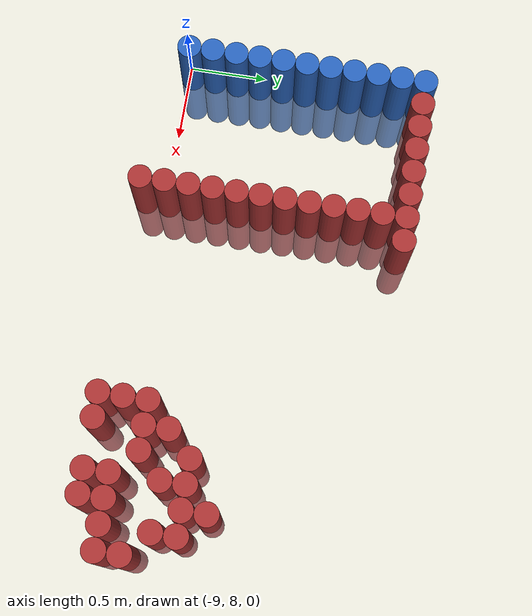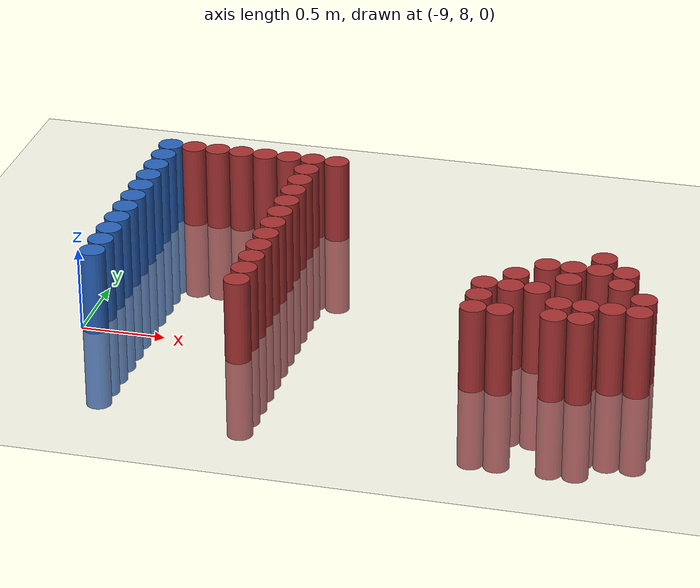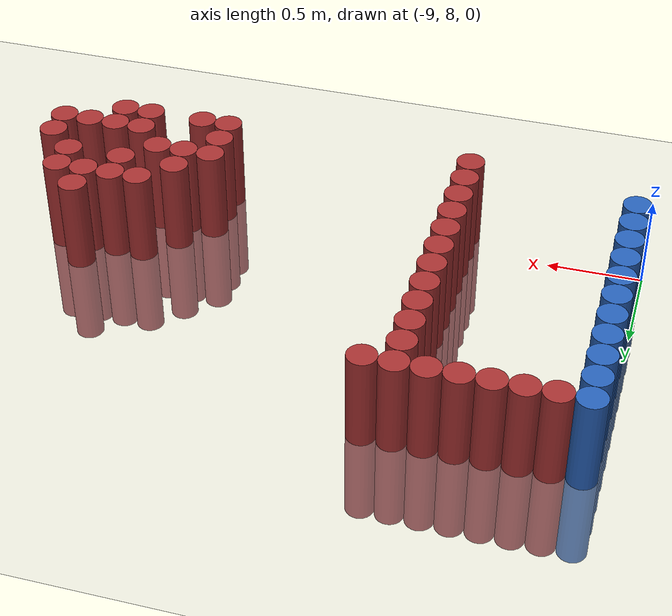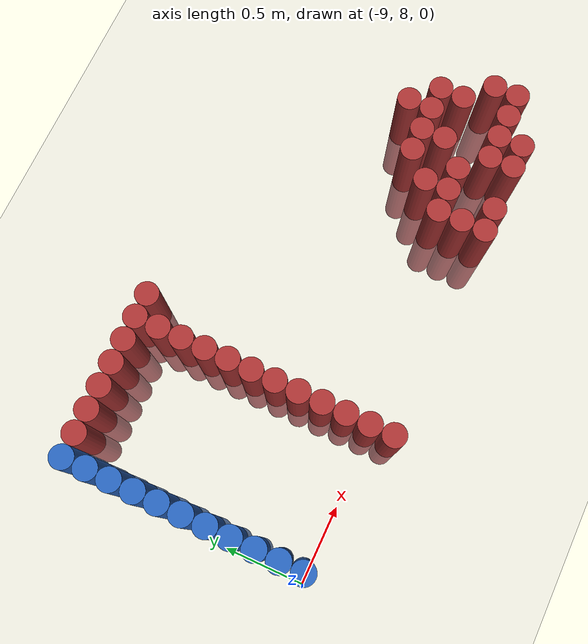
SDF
<sdf version="1.6">
 <world name="default">
  <model name="ground_plane">
   <static>1</static>
   <link name="link">
    <collision name="collision">
     <geometry><plane><normal>0 0 1</normal><size>100 100</size></plane></geometry>
     <surface><friction><ode><mu>100</mu><mu2>50</mu2></ode></friction></surface>
    </collision>
    <visual name="visual">
     <cast_shadows>0</cast_shadows>
     <geometry><plane><normal>0 0 1</normal><size>100 100</size></plane></geometry>
     <material>
      <script><uri>file://media/materials/scripts/gazebo.material</uri><name>Gazebo/Grey</name></script>
     </material>
    </visual>
   </link>
  </model>
  <model name="unit_cylinder_144">
   <static>1</static>
   <pose>-8.925000 8.025000 0.000000 0.000000 0.000000 0.000000</pose>
   <link name="link">
    <inertial>
     <mass>1</mass>
     <inertia><ixx>0.145833</ixx><ixy>0</ixy><ixz>0</ixz><iyy>0.145833</iyy><iyz>0</iyz><izz>0.125</izz></inertia>
    </inertial>
    <collision name="collision">
     <geometry><cylinder><radius>0.075000</radius><length>1</length></cylinder></geometry>
    </collision>
    <visual name="visual">
     <geometry><cylinder><radius>0.075000</radius><length>1</length></cylinder></geometry>
     <material>
      <ambient>0.152000 0.379000 0.720000 1</ambient>
      <diffuse>0.152000 0.379000 0.720000 1</diffuse>
     </material>
     <material>
      <script><name>Gazebo/Grey</name><uri>file://media/materials/scripts/gazebo.material</uri></script>
     </material>
    </visual>
   </link>
  </model>
  <model name="unit_cylinder_145">
   <static>1</static>
   <pose>-8.925000 8.175000 0.000000 0.000000 0.000000 0.000000</pose>
   <link name="link">
    <inertial>
     <mass>1</mass>
     <inertia><ixx>0.145833</ixx><ixy>0</ixy><ixz>0</ixz><iyy>0.145833</iyy><iyz>0</iyz><izz>0.125</izz></inertia>
    </inertial>
    <collision name="collision">
     <geometry><cylinder><radius>0.075000</radius><length>1</length></cylinder></geometry>
    </collision>
    <visual name="visual">
     <geometry><cylinder><radius>0.075000</radius><length>1</length></cylinder></geometry>
     <material>
      <ambient>0.152000 0.379000 0.720000 1</ambient>
      <diffuse>0.152000 0.379000 0.720000 1</diffuse>
     </material>
     <material>
      <script><name>Gazebo/Grey</name><uri>file://media/materials/scripts/gazebo.material</uri></script>
     </material>
    </visual>
   </link>
  </model>
  <model name="unit_cylinder_146">
   <static>1</static>
   <pose>-8.925000 8.325000 0.000000 0.000000 0.000000 0.000000</pose>
   <link name="link">
    <inertial>
     <mass>1</mass>
     <inertia><ixx>0.145833</ixx><ixy>0</ixy><ixz>0</ixz><iyy>0.145833</iyy><iyz>0</iyz><izz>0.125</izz></inertia>
    </inertial>
    <collision name="collision">
     <geometry><cylinder><radius>0.075000</radius><length>1</length></cylinder></geometry>
    </collision>
    <visual name="visual">
     <geometry><cylinder><radius>0.075000</radius><length>1</length></cylinder></geometry>
     <material>
      <ambient>0.152000 0.379000 0.720000 1</ambient>
      <diffuse>0.152000 0.379000 0.720000 1</diffuse>
     </material>
     <material>
      <script><name>Gazebo/Grey</name><uri>file://media/materials/scripts/gazebo.material</uri></script>
     </material>
    </visual>
   </link>
  </model>
  <model name="unit_cylinder_147">
   <static>1</static>
   <pose>-8.925000 8.475000 0.000000 0.000000 0.000000 0.000000</pose>
   <link name="link">
    <inertial>
     <mass>1</mass>
     <inertia><ixx>0.145833</ixx><ixy>0</ixy><ixz>0</ixz><iyy>0.145833</iyy><iyz>0</iyz><izz>0.125</izz></inertia>
    </inertial>
    <collision name="collision">
     <geometry><cylinder><radius>0.075000</radius><length>1</length></cylinder></geometry>
    </collision>
    <visual name="visual">
     <geometry><cylinder><radius>0.075000</radius><length>1</length></cylinder></geometry>
     <material>
      <ambient>0.152000 0.379000 0.720000 1</ambient>
      <diffuse>0.152000 0.379000 0.720000 1</diffuse>
     </material>
     <material>
      <script><name>Gazebo/Grey</name><uri>file://media/materials/scripts/gazebo.material</uri></script>
     </material>
    </visual>
   </link>
  </model>
  <model name="unit_cylinder_148">
   <static>1</static>
   <pose>-8.925000 8.625000 0.000000 0.000000 0.000000 0.000000</pose>
   <link name="link">
    <inertial>
     <mass>1</mass>
     <inertia><ixx>0.145833</ixx><ixy>0</ixy><ixz>0</ixz><iyy>0.145833</iyy><iyz>0</iyz><izz>0.125</izz></inertia>
    </inertial>
    <collision name="collision">
     <geometry><cylinder><radius>0.075000</radius><length>1</length></cylinder></geometry>
    </collision>
    <visual name="visual">
     <geometry><cylinder><radius>0.075000</radius><length>1</length></cylinder></geometry>
     <material>
      <ambient>0.152000 0.379000 0.720000 1</ambient>
      <diffuse>0.152000 0.379000 0.720000 1</diffuse>
     </material>
     <material>
      <script><name>Gazebo/Grey</name><uri>file://media/materials/scripts/gazebo.material</uri></script>
     </material>
    </visual>
   </link>
  </model>
  <model name="unit_cylinder_149">
   <static>1</static>
   <pose>-8.925000 8.775000 0.000000 0.000000 0.000000 0.000000</pose>
   <link name="link">
    <inertial>
     <mass>1</mass>
     <inertia><ixx>0.145833</ixx><ixy>0</ixy><ixz>0</ixz><iyy>0.145833</iyy><iyz>0</iyz><izz>0.125</izz></inertia>
    </inertial>
    <collision name="collision">
     <geometry><cylinder><radius>0.075000</radius><length>1</length></cylinder></geometry>
    </collision>
    <visual name="visual">
     <geometry><cylinder><radius>0.075000</radius><length>1</length></cylinder></geometry>
     <material>
      <ambient>0.152000 0.379000 0.720000 1</ambient>
      <diffuse>0.152000 0.379000 0.720000 1</diffuse>
     </material>
     <material>
      <script><name>Gazebo/Grey</name><uri>file://media/materials/scripts/gazebo.material</uri></script>
     </material>
    </visual>
   </link>
  </model>
  <model name="unit_cylinder_150">
   <static>1</static>
   <pose>-8.925000 8.925000 0.000000 0.000000 0.000000 0.000000</pose>
   <link name="link">
    <inertial>
     <mass>1</mass>
     <inertia><ixx>0.145833</ixx><ixy>0</ixy><ixz>0</ixz><iyy>0.145833</iyy><iyz>0</iyz><izz>0.125</izz></inertia>
    </inertial>
    <collision name="collision">
     <geometry><cylinder><radius>0.075000</radius><length>1</length></cylinder></geometry>
    </collision>
    <visual name="visual">
     <geometry><cylinder><radius>0.075000</radius><length>1</length></cylinder></geometry>
     <material>
      <ambient>0.152000 0.379000 0.720000 1</ambient>
      <diffuse>0.152000 0.379000 0.720000 1</diffuse>
     </material>
     <material>
      <script><name>Gazebo/Grey</name><uri>file://media/materials/scripts/gazebo.material</uri></script>
     </material>
    </visual>
   </link>
  </model>
  <model name="unit_cylinder_151">
   <static>1</static>
   <pose>-8.925000 9.075000 0.000000 0.000000 0.000000 0.000000</pose>
   <link name="link">
    <inertial>
     <mass>1</mass>
     <inertia><ixx>0.145833</ixx><ixy>0</ixy><ixz>0</ixz><iyy>0.145833</iyy><iyz>0</iyz><izz>0.125</izz></inertia>
    </inertial>
    <collision name="collision">
     <geometry><cylinder><radius>0.075000</radius><length>1</length></cylinder></geometry>
    </collision>
    <visual name="visual">
     <geometry><cylinder><radius>0.075000</radius><length>1</length></cylinder></geometry>
     <material>
      <ambient>0.152000 0.379000 0.720000 1</ambient>
      <diffuse>0.152000 0.379000 0.720000 1</diffuse>
     </material>
     <material>
      <script><name>Gazebo/Grey</name><uri>file://media/materials/scripts/gazebo.material</uri></script>
     </material>
    </visual>
   </link>
  </model>
  <model name="unit_cylinder_152">
   <static>1</static>
   <pose>-8.925000 9.225000 0.000000 0.000000 0.000000 0.000000</pose>
   <link name="link">
    <inertial>
     <mass>1</mass>
     <inertia><ixx>0.145833</ixx><ixy>0</ixy><ixz>0</ixz><iyy>0.145833</iyy><iyz>0</iyz><izz>0.125</izz></inertia>
    </inertial>
    <collision name="collision">
     <geometry><cylinder><radius>0.075000</radius><length>1</length></cylinder></geometry>
    </collision>
    <visual name="visual">
     <geometry><cylinder><radius>0.075000</radius><length>1</length></cylinder></geometry>
     <material>
      <ambient>0.152000 0.379000 0.720000 1</ambient>
      <diffuse>0.152000 0.379000 0.720000 1</diffuse>
     </material>
     <material>
      <script><name>Gazebo/Grey</name><uri>file://media/materials/scripts/gazebo.material</uri></script>
     </material>
    </visual>
   </link>
  </model>
  <model name="unit_cylinder_153">
   <static>1</static>
   <pose>-8.925000 9.375000 0.000000 0.000000 0.000000 0.000000</pose>
   <link name="link">
    <inertial>
     <mass>1</mass>
     <inertia><ixx>0.145833</ixx><ixy>0</ixy><ixz>0</ixz><iyy>0.145833</iyy><iyz>0</iyz><izz>0.125</izz></inertia>
    </inertial>
    <collision name="collision">
     <geometry><cylinder><radius>0.075000</radius><length>1</length></cylinder></geometry>
    </collision>
    <visual name="visual">
     <geometry><cylinder><radius>0.075000</radius><length>1</length></cylinder></geometry>
     <material>
      <ambient>0.152000 0.379000 0.720000 1</ambient>
      <diffuse>0.152000 0.379000 0.720000 1</diffuse>
     </material>
     <material>
      <script><name>Gazebo/Grey</name><uri>file://media/materials/scripts/gazebo.material</uri></script>
     </material>
    </visual>
   </link>
  </model>
  <model name="unit_cylinder_154">
   <static>1</static>
   <pose>-8.925000 9.525000 0.000000 0.000000 0.000000 0.000000</pose>
   <link name="link">
    <inertial>
     <mass>1</mass>
     <inertia><ixx>0.145833</ixx><ixy>0</ixy><ixz>0</ixz><iyy>0.145833</iyy><iyz>0</iyz><izz>0.125</izz></inertia>
    </inertial>
    <collision name="collision">
     <geometry><cylinder><radius>0.075000</radius><length>1</length></cylinder></geometry>
    </collision>
    <visual name="visual">
     <geometry><cylinder><radius>0.075000</radius><length>1</length></cylinder></geometry>
     <material>
      <ambient>0.152000 0.379000 0.720000 1</ambient>
      <diffuse>0.152000 0.379000 0.720000 1</diffuse>
     </material>
     <material>
      <script><name>Gazebo/Grey</name><uri>file://media/materials/scripts/gazebo.material</uri></script>
     </material>
    </visual>
   </link>
  </model>
  <model name="unit_cylinder_156">
   <static>1</static>
   <pose>-8.775000 9.525000 0.000000 0.000000 0.000000 0.000000</pose>
   <link name="link">
    <inertial>
     <mass>1</mass>
     <inertia><ixx>0.145833</ixx><ixy>0</ixy><ixz>0</ixz><iyy>0.145833</iyy><iyz>0</iyz><izz>0.125</izz></inertia>
    </inertial>
    <collision name="collision">
     <geometry><cylinder><radius>0.075000</radius><length>1</length></cylinder></geometry>
    </collision>
    <visual name="visual">
     <geometry><cylinder><radius>0.075000</radius><length>1</length></cylinder></geometry>
     <material>
      <ambient>0.648000 0.192000 0.192000 1</ambient>
      <diffuse>0.648000 0.192000 0.192000 1</diffuse>
     </material>
     <material>
      <script><name>Gazebo/Grey</name><uri>file://media/materials/scripts/gazebo.material</uri></script>
     </material>
    </visual>
   </link>
  </model>
  <model name="unit_cylinder_158">
   <static>1</static>
   <pose>-8.625000 9.525000 0.000000 0.000000 0.000000 0.000000</pose>
   <link name="link">
    <inertial>
     <mass>1</mass>
     <inertia><ixx>0.145833</ixx><ixy>0</ixy><ixz>0</ixz><iyy>0.145833</iyy><iyz>0</iyz><izz>0.125</izz></inertia>
    </inertial>
    <collision name="collision">
     <geometry><cylinder><radius>0.075000</radius><length>1</length></cylinder></geometry>
    </collision>
    <visual name="visual">
     <geometry><cylinder><radius>0.075000</radius><length>1</length></cylinder></geometry>
     <material>
      <ambient>0.648000 0.192000 0.192000 1</ambient>
      <diffuse>0.648000 0.192000 0.192000 1</diffuse>
     </material>
     <material>
      <script><name>Gazebo/Grey</name><uri>file://media/materials/scripts/gazebo.material</uri></script>
     </material>
    </visual>
   </link>
  </model>
  <model name="unit_cylinder_160">
   <static>1</static>
   <pose>-8.475000 9.525000 0.000000 0.000000 0.000000 0.000000</pose>
   <link name="link">
    <inertial>
     <mass>1</mass>
     <inertia><ixx>0.145833</ixx><ixy>0</ixy><ixz>0</ixz><iyy>0.145833</iyy><iyz>0</iyz><izz>0.125</izz></inertia>
    </inertial>
    <collision name="collision">
     <geometry><cylinder><radius>0.075000</radius><length>1</length></cylinder></geometry>
    </collision>
    <visual name="visual">
     <geometry><cylinder><radius>0.075000</radius><length>1</length></cylinder></geometry>
     <material>
      <ambient>0.648000 0.192000 0.192000 1</ambient>
      <diffuse>0.648000 0.192000 0.192000 1</diffuse>
     </material>
     <material>
      <script><name>Gazebo/Grey</name><uri>file://media/materials/scripts/gazebo.material</uri></script>
     </material>
    </visual>
   </link>
  </model>
  <model name="unit_cylinder_162">
   <static>1</static>
   <pose>-8.325000 9.525000 0.000000 0.000000 0.000000 0.000000</pose>
   <link name="link">
    <inertial>
     <mass>1</mass>
     <inertia><ixx>0.145833</ixx><ixy>0</ixy><ixz>0</ixz><iyy>0.145833</iyy><iyz>0</iyz><izz>0.125</izz></inertia>
    </inertial>
    <collision name="collision">
     <geometry><cylinder><radius>0.075000</radius><length>1</length></cylinder></geometry>
    </collision>
    <visual name="visual">
     <geometry><cylinder><radius>0.075000</radius><length>1</length></cylinder></geometry>
     <material>
      <ambient>0.648000 0.192000 0.192000 1</ambient>
      <diffuse>0.648000 0.192000 0.192000 1</diffuse>
     </material>
     <material>
      <script><name>Gazebo/Grey</name><uri>file://media/materials/scripts/gazebo.material</uri></script>
     </material>
    </visual>
   </link>
  </model>
  <model name="unit_cylinder_164">
   <static>1</static>
   <pose>-8.175000 9.525000 0.000000 0.000000 0.000000 0.000000</pose>
   <link name="link">
    <inertial>
     <mass>1</mass>
     <inertia><ixx>0.145833</ixx><ixy>0</ixy><ixz>0</ixz><iyy>0.145833</iyy><iyz>0</iyz><izz>0.125</izz></inertia>
    </inertial>
    <collision name="collision">
     <geometry><cylinder><radius>0.075000</radius><length>1</length></cylinder></geometry>
    </collision>
    <visual name="visual">
     <geometry><cylinder><radius>0.075000</radius><length>1</length></cylinder></geometry>
     <material>
      <ambient>0.648000 0.192000 0.192000 1</ambient>
      <diffuse>0.648000 0.192000 0.192000 1</diffuse>
     </material>
     <material>
      <script><name>Gazebo/Grey</name><uri>file://media/materials/scripts/gazebo.material</uri></script>
     </material>
    </visual>
   </link>
  </model>
  <model name="unit_cylinder_183">
   <static>1</static>
   <pose>-8.025000 7.875000 0.000000 0.000000 0.000000 0.000000</pose>
   <link name="link">
    <inertial>
     <mass>1</mass>
     <inertia><ixx>0.145833</ixx><ixy>0</ixy><ixz>0</ixz><iyy>0.145833</iyy><iyz>0</iyz><izz>0.125</izz></inertia>
    </inertial>
    <collision name="collision">
     <geometry><cylinder><radius>0.075000</radius><length>1</length></cylinder></geometry>
    </collision>
    <visual name="visual">
     <geometry><cylinder><radius>0.075000</radius><length>1</length></cylinder></geometry>
     <material>
      <ambient>0.648000 0.192000 0.192000 1</ambient>
      <diffuse>0.648000 0.192000 0.192000 1</diffuse>
     </material>
     <material>
      <script><name>Gazebo/Grey</name><uri>file://media/materials/scripts/gazebo.material</uri></script>
     </material>
    </visual>
   </link>
  </model>
  <model name="unit_cylinder_184">
   <static>1</static>
   <pose>-8.025000 8.025000 0.000000 0.000000 0.000000 0.000000</pose>
   <link name="link">
    <inertial>
     <mass>1</mass>
     <inertia><ixx>0.145833</ixx><ixy>0</ixy><ixz>0</ixz><iyy>0.145833</iyy><iyz>0</iyz><izz>0.125</izz></inertia>
    </inertial>
    <collision name="collision">
     <geometry><cylinder><radius>0.075000</radius><length>1</length></cylinder></geometry>
    </collision>
    <visual name="visual">
     <geometry><cylinder><radius>0.075000</radius><length>1</length></cylinder></geometry>
     <material>
      <ambient>0.648000 0.192000 0.192000 1</ambient>
      <diffuse>0.648000 0.192000 0.192000 1</diffuse>
     </material>
     <material>
      <script><name>Gazebo/Grey</name><uri>file://media/materials/scripts/gazebo.material</uri></script>
     </material>
    </visual>
   </link>
  </model>
  <model name="unit_cylinder_185">
   <static>1</static>
   <pose>-8.025000 8.175000 0.000000 0.000000 0.000000 0.000000</pose>
   <link name="link">
    <inertial>
     <mass>1</mass>
     <inertia><ixx>0.145833</ixx><ixy>0</ixy><ixz>0</ixz><iyy>0.145833</iyy><iyz>0</iyz><izz>0.125</izz></inertia>
    </inertial>
    <collision name="collision">
     <geometry><cylinder><radius>0.075000</radius><length>1</length></cylinder></geometry>
    </collision>
    <visual name="visual">
     <geometry><cylinder><radius>0.075000</radius><length>1</length></cylinder></geometry>
     <material>
      <ambient>0.648000 0.192000 0.192000 1</ambient>
      <diffuse>0.648000 0.192000 0.192000 1</diffuse>
     </material>
     <material>
      <script><name>Gazebo/Grey</name><uri>file://media/materials/scripts/gazebo.material</uri></script>
     </material>
    </visual>
   </link>
  </model>
  <model name="unit_cylinder_186">
   <static>1</static>
   <pose>-8.025000 8.325000 0.000000 0.000000 0.000000 0.000000</pose>
   <link name="link">
    <inertial>
     <mass>1</mass>
     <inertia><ixx>0.145833</ixx><ixy>0</ixy><ixz>0</ixz><iyy>0.145833</iyy><iyz>0</iyz><izz>0.125</izz></inertia>
    </inertial>
    <collision name="collision">
     <geometry><cylinder><radius>0.075000</radius><length>1</length></cylinder></geometry>
    </collision>
    <visual name="visual">
     <geometry><cylinder><radius>0.075000</radius><length>1</length></cylinder></geometry>
     <material>
      <ambient>0.648000 0.192000 0.192000 1</ambient>
      <diffuse>0.648000 0.192000 0.192000 1</diffuse>
     </material>
     <material>
      <script><name>Gazebo/Grey</name><uri>file://media/materials/scripts/gazebo.material</uri></script>
     </material>
    </visual>
   </link>
  </model>
  <model name="unit_cylinder_187">
   <static>1</static>
   <pose>-8.025000 8.475000 0.000000 0.000000 0.000000 0.000000</pose>
   <link name="link">
    <inertial>
     <mass>1</mass>
     <inertia><ixx>0.145833</ixx><ixy>0</ixy><ixz>0</ixz><iyy>0.145833</iyy><iyz>0</iyz><izz>0.125</izz></inertia>
    </inertial>
    <collision name="collision">
     <geometry><cylinder><radius>0.075000</radius><length>1</length></cylinder></geometry>
    </collision>
    <visual name="visual">
     <geometry><cylinder><radius>0.075000</radius><length>1</length></cylinder></geometry>
     <material>
      <ambient>0.648000 0.192000 0.192000 1</ambient>
      <diffuse>0.648000 0.192000 0.192000 1</diffuse>
     </material>
     <material>
      <script><name>Gazebo/Grey</name><uri>file://media/materials/scripts/gazebo.material</uri></script>
     </material>
    </visual>
   </link>
  </model>
  <model name="unit_cylinder_188">
   <static>1</static>
   <pose>-8.025000 8.625000 0.000000 0.000000 0.000000 0.000000</pose>
   <link name="link">
    <inertial>
     <mass>1</mass>
     <inertia><ixx>0.145833</ixx><ixy>0</ixy><ixz>0</ixz><iyy>0.145833</iyy><iyz>0</iyz><izz>0.125</izz></inertia>
    </inertial>
    <collision name="collision">
     <geometry><cylinder><radius>0.075000</radius><length>1</length></cylinder></geometry>
    </collision>
    <visual name="visual">
     <geometry><cylinder><radius>0.075000</radius><length>1</length></cylinder></geometry>
     <material>
      <ambient>0.648000 0.192000 0.192000 1</ambient>
      <diffuse>0.648000 0.192000 0.192000 1</diffuse>
     </material>
     <material>
      <script><name>Gazebo/Grey</name><uri>file://media/materials/scripts/gazebo.material</uri></script>
     </material>
    </visual>
   </link>
  </model>
  <model name="unit_cylinder_189">
   <static>1</static>
   <pose>-8.025000 8.775000 0.000000 0.000000 0.000000 0.000000</pose>
   <link name="link">
    <inertial>
     <mass>1</mass>
     <inertia><ixx>0.145833</ixx><ixy>0</ixy><ixz>0</ixz><iyy>0.145833</iyy><iyz>0</iyz><izz>0.125</izz></inertia>
    </inertial>
    <collision name="collision">
     <geometry><cylinder><radius>0.075000</radius><length>1</length></cylinder></geometry>
    </collision>
    <visual name="visual">
     <geometry><cylinder><radius>0.075000</radius><length>1</length></cylinder></geometry>
     <material>
      <ambient>0.648000 0.192000 0.192000 1</ambient>
      <diffuse>0.648000 0.192000 0.192000 1</diffuse>
     </material>
     <material>
      <script><name>Gazebo/Grey</name><uri>file://media/materials/scripts/gazebo.material</uri></script>
     </material>
    </visual>
   </link>
  </model>
  <model name="unit_cylinder_190">
   <static>1</static>
   <pose>-8.025000 8.925000 0.000000 0.000000 0.000000 0.000000</pose>
   <link name="link">
    <inertial>
     <mass>1</mass>
     <inertia><ixx>0.145833</ixx><ixy>0</ixy><ixz>0</ixz><iyy>0.145833</iyy><iyz>0</iyz><izz>0.125</izz></inertia>
    </inertial>
    <collision name="collision">
     <geometry><cylinder><radius>0.075000</radius><length>1</length></cylinder></geometry>
    </collision>
    <visual name="visual">
     <geometry><cylinder><radius>0.075000</radius><length>1</length></cylinder></geometry>
     <material>
      <ambient>0.648000 0.192000 0.192000 1</ambient>
      <diffuse>0.648000 0.192000 0.192000 1</diffuse>
     </material>
     <material>
      <script><name>Gazebo/Grey</name><uri>file://media/materials/scripts/gazebo.material</uri></script>
     </material>
    </visual>
   </link>
  </model>
  <model name="unit_cylinder_191">
   <static>1</static>
   <pose>-8.025000 9.075000 0.000000 0.000000 0.000000 0.000000</pose>
   <link name="link">
    <inertial>
     <mass>1</mass>
     <inertia><ixx>0.145833</ixx><ixy>0</ixy><ixz>0</ixz><iyy>0.145833</iyy><iyz>0</iyz><izz>0.125</izz></inertia>
    </inertial>
    <collision name="collision">
     <geometry><cylinder><radius>0.075000</radius><length>1</length></cylinder></geometry>
    </collision>
    <visual name="visual">
     <geometry><cylinder><radius>0.075000</radius><length>1</length></cylinder></geometry>
     <material>
      <ambient>0.648000 0.192000 0.192000 1</ambient>
      <diffuse>0.648000 0.192000 0.192000 1</diffuse>
     </material>
     <material>
      <script><name>Gazebo/Grey</name><uri>file://media/materials/scripts/gazebo.material</uri></script>
     </material>
    </visual>
   </link>
  </model>
  <model name="unit_cylinder_192">
   <static>1</static>
   <pose>-8.025000 9.225000 0.000000 0.000000 0.000000 0.000000</pose>
   <link name="link">
    <inertial>
     <mass>1</mass>
     <inertia><ixx>0.145833</ixx><ixy>0</ixy><ixz>0</ixz><iyy>0.145833</iyy><iyz>0</iyz><izz>0.125</izz></inertia>
    </inertial>
    <collision name="collision">
     <geometry><cylinder><radius>0.075000</radius><length>1</length></cylinder></geometry>
    </collision>
    <visual name="visual">
     <geometry><cylinder><radius>0.075000</radius><length>1</length></cylinder></geometry>
     <material>
      <ambient>0.648000 0.192000 0.192000 1</ambient>
      <diffuse>0.648000 0.192000 0.192000 1</diffuse>
     </material>
     <material>
      <script><name>Gazebo/Grey</name><uri>file://media/materials/scripts/gazebo.material</uri></script>
     </material>
    </visual>
   </link>
  </model>
  <model name="unit_cylinder_193">
   <static>1</static>
   <pose>-8.025000 9.375000 0.000000 0.000000 0.000000 0.000000</pose>
   <link name="link">
    <inertial>
     <mass>1</mass>
     <inertia><ixx>0.145833</ixx><ixy>0</ixy><ixz>0</ixz><iyy>0.145833</iyy><iyz>0</iyz><izz>0.125</izz></inertia>
    </inertial>
    <collision name="collision">
     <geometry><cylinder><radius>0.075000</radius><length>1</length></cylinder></geometry>
    </collision>
    <visual name="visual">
     <geometry><cylinder><radius>0.075000</radius><length>1</length></cylinder></geometry>
     <material>
      <ambient>0.648000 0.192000 0.192000 1</ambient>
      <diffuse>0.648000 0.192000 0.192000 1</diffuse>
     </material>
     <material>
      <script><name>Gazebo/Grey</name><uri>file://media/materials/scripts/gazebo.material</uri></script>
     </material>
    </visual>
   </link>
  </model>
  <model name="unit_cylinder_194">
   <static>1</static>
   <pose>-8.025000 9.525000 0.000000 0.000000 0.000000 0.000000</pose>
   <link name="link">
    <inertial>
     <mass>1</mass>
     <inertia><ixx>0.145833</ixx><ixy>0</ixy><ixz>0</ixz><iyy>0.145833</iyy><iyz>0</iyz><izz>0.125</izz></inertia>
    </inertial>
    <collision name="collision">
     <geometry><cylinder><radius>0.075000</radius><length>1</length></cylinder></geometry>
    </collision>
    <visual name="visual">
     <geometry><cylinder><radius>0.075000</radius><length>1</length></cylinder></geometry>
     <material>
      <ambient>0.648000 0.192000 0.192000 1</ambient>
      <diffuse>0.648000 0.192000 0.192000 1</diffuse>
     </material>
     <material>
      <script><name>Gazebo/Grey</name><uri>file://media/materials/scripts/gazebo.material</uri></script>
     </material>
    </visual>
   </link>
  </model>
  <model name="unit_cylinder_196">
   <static>1</static>
   <pose>-7.875000 9.525000 0.000000 0.000000 0.000000 0.000000</pose>
   <link name="link">
    <inertial>
     <mass>1</mass>
     <inertia><ixx>0.145833</ixx><ixy>0</ixy><ixz>0</ixz><iyy>0.145833</iyy><iyz>0</iyz><izz>0.125</izz></inertia>
    </inertial>
    <collision name="collision">
     <geometry><cylinder><radius>0.075000</radius><length>1</length></cylinder></geometry>
    </collision>
    <visual name="visual">
     <geometry><cylinder><radius>0.075000</radius><length>1</length></cylinder></geometry>
     <material>
      <ambient>0.648000 0.192000 0.192000 1</ambient>
      <diffuse>0.648000 0.192000 0.192000 1</diffuse>
     </material>
     <material>
      <script><name>Gazebo/Grey</name><uri>file://media/materials/scripts/gazebo.material</uri></script>
     </material>
    </visual>
   </link>
  </model>
  <model name="unit_cylinder_202">
   <static>1</static>
   <pose>-6.675000 7.875000 0.000000 0.000000 0.000000 0.000000</pose>
   <link name="link">
    <inertial>
     <mass>1</mass>
     <inertia><ixx>0.145833</ixx><ixy>0</ixy><ixz>0</ixz><iyy>0.145833</iyy><iyz>0</iyz><izz>0.125</izz></inertia>
    </inertial>
    <collision name="collision">
     <geometry><cylinder><radius>0.075000</radius><length>1</length></cylinder></geometry>
    </collision>
    <visual name="visual">
     <geometry><cylinder><radius>0.075000</radius><length>1</length></cylinder></geometry>
     <material>
      <ambient>0.648000 0.192000 0.192000 1</ambient>
      <diffuse>0.648000 0.192000 0.192000 1</diffuse>
     </material>
     <material>
      <script><name>Gazebo/Grey</name><uri>file://media/materials/scripts/gazebo.material</uri></script>
     </material>
    </visual>
   </link>
  </model>
  <model name="unit_cylinder_203">
   <static>1</static>
   <pose>-6.675000 8.025000 0.000000 0.000000 0.000000 0.000000</pose>
   <link name="link">
    <inertial>
     <mass>1</mass>
     <inertia><ixx>0.145833</ixx><ixy>0</ixy><ixz>0</ixz><iyy>0.145833</iyy><iyz>0</iyz><izz>0.125</izz></inertia>
    </inertial>
    <collision name="collision">
     <geometry><cylinder><radius>0.075000</radius><length>1</length></cylinder></geometry>
    </collision>
    <visual name="visual">
     <geometry><cylinder><radius>0.075000</radius><length>1</length></cylinder></geometry>
     <material>
      <ambient>0.648000 0.192000 0.192000 1</ambient>
      <diffuse>0.648000 0.192000 0.192000 1</diffuse>
     </material>
     <material>
      <script><name>Gazebo/Grey</name><uri>file://media/materials/scripts/gazebo.material</uri></script>
     </material>
    </visual>
   </link>
  </model>
  <model name="unit_cylinder_204">
   <static>1</static>
   <pose>-6.675000 8.175000 0.000000 0.000000 0.000000 0.000000</pose>
   <link name="link">
    <inertial>
     <mass>1</mass>
     <inertia><ixx>0.145833</ixx><ixy>0</ixy><ixz>0</ixz><iyy>0.145833</iyy><iyz>0</iyz><izz>0.125</izz></inertia>
    </inertial>
    <collision name="collision">
     <geometry><cylinder><radius>0.075000</radius><length>1</length></cylinder></geometry>
    </collision>
    <visual name="visual">
     <geometry><cylinder><radius>0.075000</radius><length>1</length></cylinder></geometry>
     <material>
      <ambient>0.648000 0.192000 0.192000 1</ambient>
      <diffuse>0.648000 0.192000 0.192000 1</diffuse>
     </material>
     <material>
      <script><name>Gazebo/Grey</name><uri>file://media/materials/scripts/gazebo.material</uri></script>
     </material>
    </visual>
   </link>
  </model>
  <model name="unit_cylinder_212">
   <static>1</static>
   <pose>-6.525000 7.875000 0.000000 0.000000 0.000000 0.000000</pose>
   <link name="link">
    <inertial>
     <mass>1</mass>
     <inertia><ixx>0.145833</ixx><ixy>0</ixy><ixz>0</ixz><iyy>0.145833</iyy><iyz>0</iyz><izz>0.125</izz></inertia>
    </inertial>
    <collision name="collision">
     <geometry><cylinder><radius>0.075000</radius><length>1</length></cylinder></geometry>
    </collision>
    <visual name="visual">
     <geometry><cylinder><radius>0.075000</radius><length>1</length></cylinder></geometry>
     <material>
      <ambient>0.648000 0.192000 0.192000 1</ambient>
      <diffuse>0.648000 0.192000 0.192000 1</diffuse>
     </material>
     <material>
      <script><name>Gazebo/Grey</name><uri>file://media/materials/scripts/gazebo.material</uri></script>
     </material>
    </visual>
   </link>
  </model>
  <model name="unit_cylinder_213">
   <static>1</static>
   <pose>-6.525000 8.175000 0.000000 0.000000 0.000000 0.000000</pose>
   <link name="link">
    <inertial>
     <mass>1</mass>
     <inertia><ixx>0.145833</ixx><ixy>0</ixy><ixz>0</ixz><iyy>0.145833</iyy><iyz>0</iyz><izz>0.125</izz></inertia>
    </inertial>
    <collision name="collision">
     <geometry><cylinder><radius>0.075000</radius><length>1</length></cylinder></geometry>
    </collision>
    <visual name="visual">
     <geometry><cylinder><radius>0.075000</radius><length>1</length></cylinder></geometry>
     <material>
      <ambient>0.648000 0.192000 0.192000 1</ambient>
      <diffuse>0.648000 0.192000 0.192000 1</diffuse>
     </material>
     <material>
      <script><name>Gazebo/Grey</name><uri>file://media/materials/scripts/gazebo.material</uri></script>
     </material>
    </visual>
   </link>
  </model>
  <model name="unit_cylinder_214">
   <static>1</static>
   <pose>-6.525000 8.325000 0.000000 0.000000 0.000000 0.000000</pose>
   <link name="link">
    <inertial>
     <mass>1</mass>
     <inertia><ixx>0.145833</ixx><ixy>0</ixy><ixz>0</ixz><iyy>0.145833</iyy><iyz>0</iyz><izz>0.125</izz></inertia>
    </inertial>
    <collision name="collision">
     <geometry><cylinder><radius>0.075000</radius><length>1</length></cylinder></geometry>
    </collision>
    <visual name="visual">
     <geometry><cylinder><radius>0.075000</radius><length>1</length></cylinder></geometry>
     <material>
      <ambient>0.648000 0.192000 0.192000 1</ambient>
      <diffuse>0.648000 0.192000 0.192000 1</diffuse>
     </material>
     <material>
      <script><name>Gazebo/Grey</name><uri>file://media/materials/scripts/gazebo.material</uri></script>
     </material>
    </visual>
   </link>
  </model>
  <model name="unit_cylinder_220">
   <static>1</static>
   <pose>-6.375000 8.175000 0.000000 0.000000 0.000000 0.000000</pose>
   <link name="link">
    <inertial>
     <mass>1</mass>
     <inertia><ixx>0.145833</ixx><ixy>0</ixy><ixz>0</ixz><iyy>0.145833</iyy><iyz>0</iyz><izz>0.125</izz></inertia>
    </inertial>
    <collision name="collision">
     <geometry><cylinder><radius>0.075000</radius><length>1</length></cylinder></geometry>
    </collision>
    <visual name="visual">
     <geometry><cylinder><radius>0.075000</radius><length>1</length></cylinder></geometry>
     <material>
      <ambient>0.648000 0.192000 0.192000 1</ambient>
      <diffuse>0.648000 0.192000 0.192000 1</diffuse>
     </material>
     <material>
      <script><name>Gazebo/Grey</name><uri>file://media/materials/scripts/gazebo.material</uri></script>
     </material>
    </visual>
   </link>
  </model>
  <model name="unit_cylinder_221">
   <static>1</static>
   <pose>-6.375000 8.475000 0.000000 0.000000 0.000000 0.000000</pose>
   <link name="link">
    <inertial>
     <mass>1</mass>
     <inertia><ixx>0.145833</ixx><ixy>0</ixy><ixz>0</ixz><iyy>0.145833</iyy><iyz>0</iyz><izz>0.125</izz></inertia>
    </inertial>
    <collision name="collision">
     <geometry><cylinder><radius>0.075000</radius><length>1</length></cylinder></geometry>
    </collision>
    <visual name="visual">
     <geometry><cylinder><radius>0.075000</radius><length>1</length></cylinder></geometry>
     <material>
      <ambient>0.648000 0.192000 0.192000 1</ambient>
      <diffuse>0.648000 0.192000 0.192000 1</diffuse>
     </material>
     <material>
      <script><name>Gazebo/Grey</name><uri>file://media/materials/scripts/gazebo.material</uri></script>
     </material>
    </visual>
   </link>
  </model>
  <model name="unit_cylinder_224">
   <static>1</static>
   <pose>-6.225000 7.875000 0.000000 0.000000 0.000000 0.000000</pose>
   <link name="link">
    <inertial>
     <mass>1</mass>
     <inertia><ixx>0.145833</ixx><ixy>0</ixy><ixz>0</ixz><iyy>0.145833</iyy><iyz>0</iyz><izz>0.125</izz></inertia>
    </inertial>
    <collision name="collision">
     <geometry><cylinder><radius>0.075000</radius><length>1</length></cylinder></geometry>
    </collision>
    <visual name="visual">
     <geometry><cylinder><radius>0.075000</radius><length>1</length></cylinder></geometry>
     <material>
      <ambient>0.648000 0.192000 0.192000 1</ambient>
      <diffuse>0.648000 0.192000 0.192000 1</diffuse>
     </material>
     <material>
      <script><name>Gazebo/Grey</name><uri>file://media/materials/scripts/gazebo.material</uri></script>
     </material>
    </visual>
   </link>
  </model>
  <model name="unit_cylinder_225">
   <static>1</static>
   <pose>-6.225000 8.025000 0.000000 0.000000 0.000000 0.000000</pose>
   <link name="link">
    <inertial>
     <mass>1</mass>
     <inertia><ixx>0.145833</ixx><ixy>0</ixy><ixz>0</ixz><iyy>0.145833</iyy><iyz>0</iyz><izz>0.125</izz></inertia>
    </inertial>
    <collision name="collision">
     <geometry><cylinder><radius>0.075000</radius><length>1</length></cylinder></geometry>
    </collision>
    <visual name="visual">
     <geometry><cylinder><radius>0.075000</radius><length>1</length></cylinder></geometry>
     <material>
      <ambient>0.648000 0.192000 0.192000 1</ambient>
      <diffuse>0.648000 0.192000 0.192000 1</diffuse>
     </material>
     <material>
      <script><name>Gazebo/Grey</name><uri>file://media/materials/scripts/gazebo.material</uri></script>
     </material>
    </visual>
   </link>
  </model>
  <model name="unit_cylinder_226">
   <static>1</static>
   <pose>-6.225000 8.325000 0.000000 0.000000 0.000000 0.000000</pose>
   <link name="link">
    <inertial>
     <mass>1</mass>
     <inertia><ixx>0.145833</ixx><ixy>0</ixy><ixz>0</ixz><iyy>0.145833</iyy><iyz>0</iyz><izz>0.125</izz></inertia>
    </inertial>
    <collision name="collision">
     <geometry><cylinder><radius>0.075000</radius><length>1</length></cylinder></geometry>
    </collision>
    <visual name="visual">
     <geometry><cylinder><radius>0.075000</radius><length>1</length></cylinder></geometry>
     <material>
      <ambient>0.648000 0.192000 0.192000 1</ambient>
      <diffuse>0.648000 0.192000 0.192000 1</diffuse>
     </material>
     <material>
      <script><name>Gazebo/Grey</name><uri>file://media/materials/scripts/gazebo.material</uri></script>
     </material>
    </visual>
   </link>
  </model>
  <model name="unit_cylinder_227">
   <static>1</static>
   <pose>-6.225000 8.475000 0.000000 0.000000 0.000000 0.000000</pose>
   <link name="link">
    <inertial>
     <mass>1</mass>
     <inertia><ixx>0.145833</ixx><ixy>0</ixy><ixz>0</ixz><iyy>0.145833</iyy><iyz>0</iyz><izz>0.125</izz></inertia>
    </inertial>
    <collision name="collision">
     <geometry><cylinder><radius>0.075000</radius><length>1</length></cylinder></geometry>
    </collision>
    <visual name="visual">
     <geometry><cylinder><radius>0.075000</radius><length>1</length></cylinder></geometry>
     <material>
      <ambient>0.648000 0.192000 0.192000 1</ambient>
      <diffuse>0.648000 0.192000 0.192000 1</diffuse>
     </material>
     <material>
      <script><name>Gazebo/Grey</name><uri>file://media/materials/scripts/gazebo.material</uri></script>
     </material>
    </visual>
   </link>
  </model>
  <model name="unit_cylinder_230">
   <static>1</static>
   <pose>-6.075000 7.875000 0.000000 0.000000 0.000000 0.000000</pose>
   <link name="link">
    <inertial>
     <mass>1</mass>
     <inertia><ixx>0.145833</ixx><ixy>0</ixy><ixz>0</ixz><iyy>0.145833</iyy><iyz>0</iyz><izz>0.125</izz></inertia>
    </inertial>
    <collision name="collision">
     <geometry><cylinder><radius>0.075000</radius><length>1</length></cylinder></geometry>
    </collision>
    <visual name="visual">
     <geometry><cylinder><radius>0.075000</radius><length>1</length></cylinder></geometry>
     <material>
      <ambient>0.648000 0.192000 0.192000 1</ambient>
      <diffuse>0.648000 0.192000 0.192000 1</diffuse>
     </material>
     <material>
      <script><name>Gazebo/Grey</name><uri>file://media/materials/scripts/gazebo.material</uri></script>
     </material>
    </visual>
   </link>
  </model>
  <model name="unit_cylinder_231">
   <static>1</static>
   <pose>-6.075000 8.025000 0.000000 0.000000 0.000000 0.000000</pose>
   <link name="link">
    <inertial>
     <mass>1</mass>
     <inertia><ixx>0.145833</ixx><ixy>0</ixy><ixz>0</ixz><iyy>0.145833</iyy><iyz>0</iyz><izz>0.125</izz></inertia>
    </inertial>
    <collision name="collision">
     <geometry><cylinder><radius>0.075000</radius><length>1</length></cylinder></geometry>
    </collision>
    <visual name="visual">
     <geometry><cylinder><radius>0.075000</radius><length>1</length></cylinder></geometry>
     <material>
      <ambient>0.648000 0.192000 0.192000 1</ambient>
      <diffuse>0.648000 0.192000 0.192000 1</diffuse>
     </material>
     <material>
      <script><name>Gazebo/Grey</name><uri>file://media/materials/scripts/gazebo.material</uri></script>
     </material>
    </visual>
   </link>
  </model>
  <model name="unit_cylinder_232">
   <static>1</static>
   <pose>-6.075000 8.475000 0.000000 0.000000 0.000000 0.000000</pose>
   <link name="link">
    <inertial>
     <mass>1</mass>
     <inertia><ixx>0.145833</ixx><ixy>0</ixy><ixz>0</ixz><iyy>0.145833</iyy><iyz>0</iyz><izz>0.125</izz></inertia>
    </inertial>
    <collision name="collision">
     <geometry><cylinder><radius>0.075000</radius><length>1</length></cylinder></geometry>
    </collision>
    <visual name="visual">
     <geometry><cylinder><radius>0.075000</radius><length>1</length></cylinder></geometry>
     <material>
      <ambient>0.648000 0.192000 0.192000 1</ambient>
      <diffuse>0.648000 0.192000 0.192000 1</diffuse>
     </material>
     <material>
      <script><name>Gazebo/Grey</name><uri>file://media/materials/scripts/gazebo.material</uri></script>
     </material>
    </visual>
   </link>
  </model>
  <model name="unit_cylinder_233">
   <static>1</static>
   <pose>-6.075000 8.625000 0.000000 0.000000 0.000000 0.000000</pose>
   <link name="link">
    <inertial>
     <mass>1</mass>
     <inertia><ixx>0.145833</ixx><ixy>0</ixy><ixz>0</ixz><iyy>0.145833</iyy><iyz>0</iyz><izz>0.125</izz></inertia>
    </inertial>
    <collision name="collision">
     <geometry><cylinder><radius>0.075000</radius><length>1</length></cylinder></geometry>
    </collision>
    <visual name="visual">
     <geometry><cylinder><radius>0.075000</radius><length>1</length></cylinder></geometry>
     <material>
      <ambient>0.648000 0.192000 0.192000 1</ambient>
      <diffuse>0.648000 0.192000 0.192000 1</diffuse>
     </material>
     <material>
      <script><name>Gazebo/Grey</name><uri>file://media/materials/scripts/gazebo.material</uri></script>
     </material>
    </visual>
   </link>
  </model>
  <model name="unit_cylinder_237">
   <static>1</static>
   <pose>-5.925000 8.025000 0.000000 0.000000 0.000000 0.000000</pose>
   <link name="link">
    <inertial>
     <mass>1</mass>
     <inertia><ixx>0.145833</ixx><ixy>0</ixy><ixz>0</ixz><iyy>0.145833</iyy><iyz>0</iyz><izz>0.125</izz></inertia>
    </inertial>
    <collision name="collision">
     <geometry><cylinder><radius>0.075000</radius><length>1</length></cylinder></geometry>
    </collision>
    <visual name="visual">
     <geometry><cylinder><radius>0.075000</radius><length>1</length></cylinder></geometry>
     <material>
      <ambient>0.648000 0.192000 0.192000 1</ambient>
      <diffuse>0.648000 0.192000 0.192000 1</diffuse>
     </material>
     <material>
      <script><name>Gazebo/Grey</name><uri>file://media/materials/scripts/gazebo.material</uri></script>
     </material>
    </visual>
   </link>
  </model>
  <model name="unit_cylinder_238">
   <static>1</static>
   <pose>-5.925000 8.325000 0.000000 0.000000 0.000000 0.000000</pose>
   <link name="link">
    <inertial>
     <mass>1</mass>
     <inertia><ixx>0.145833</ixx><ixy>0</ixy><ixz>0</ixz><iyy>0.145833</iyy><iyz>0</iyz><izz>0.125</izz></inertia>
    </inertial>
    <collision name="collision">
     <geometry><cylinder><radius>0.075000</radius><length>1</length></cylinder></geometry>
    </collision>
    <visual name="visual">
     <geometry><cylinder><radius>0.075000</radius><length>1</length></cylinder></geometry>
     <material>
      <ambient>0.648000 0.192000 0.192000 1</ambient>
      <diffuse>0.648000 0.192000 0.192000 1</diffuse>
     </material>
     <material>
      <script><name>Gazebo/Grey</name><uri>file://media/materials/scripts/gazebo.material</uri></script>
     </material>
    </visual>
   </link>
  </model>
  <model name="unit_cylinder_239">
   <static>1</static>
   <pose>-5.925000 8.475000 0.000000 0.000000 0.000000 0.000000</pose>
   <link name="link">
    <inertial>
     <mass>1</mass>
     <inertia><ixx>0.145833</ixx><ixy>0</ixy><ixz>0</ixz><iyy>0.145833</iyy><iyz>0</iyz><izz>0.125</izz></inertia>
    </inertial>
    <collision name="collision">
     <geometry><cylinder><radius>0.075000</radius><length>1</length></cylinder></geometry>
    </collision>
    <visual name="visual">
     <geometry><cylinder><radius>0.075000</radius><length>1</length></cylinder></geometry>
     <material>
      <ambient>0.648000 0.192000 0.192000 1</ambient>
      <diffuse>0.648000 0.192000 0.192000 1</diffuse>
     </material>
     <material>
      <script><name>Gazebo/Grey</name><uri>file://media/materials/scripts/gazebo.material</uri></script>
     </material>
    </visual>
   </link>
  </model>
  <model name="unit_cylinder_242">
   <static>1</static>
   <pose>-5.775000 8.025000 0.000000 0.000000 0.000000 0.000000</pose>
   <link name="link">
    <inertial>
     <mass>1</mass>
     <inertia><ixx>0.145833</ixx><ixy>0</ixy><ixz>0</ixz><iyy>0.145833</iyy><iyz>0</iyz><izz>0.125</izz></inertia>
    </inertial>
    <collision name="collision">
     <geometry><cylinder><radius>0.075000</radius><length>1</length></cylinder></geometry>
    </collision>
    <visual name="visual">
     <geometry><cylinder><radius>0.075000</radius><length>1</length></cylinder></geometry>
     <material>
      <ambient>0.648000 0.192000 0.192000 1</ambient>
      <diffuse>0.648000 0.192000 0.192000 1</diffuse>
     </material>
     <material>
      <script><name>Gazebo/Grey</name><uri>file://media/materials/scripts/gazebo.material</uri></script>
     </material>
    </visual>
   </link>
  </model>
  <model name="unit_cylinder_243">
   <static>1</static>
   <pose>-5.775000 8.175000 0.000000 0.000000 0.000000 0.000000</pose>
   <link name="link">
    <inertial>
     <mass>1</mass>
     <inertia><ixx>0.145833</ixx><ixy>0</ixy><ixz>0</ixz><iyy>0.145833</iyy><iyz>0</iyz><izz>0.125</izz></inertia>
    </inertial>
    <collision name="collision">
     <geometry><cylinder><radius>0.075000</radius><length>1</length></cylinder></geometry>
    </collision>
    <visual name="visual">
     <geometry><cylinder><radius>0.075000</radius><length>1</length></cylinder></geometry>
     <material>
      <ambient>0.648000 0.192000 0.192000 1</ambient>
      <diffuse>0.648000 0.192000 0.192000 1</diffuse>
     </material>
     <material>
      <script><name>Gazebo/Grey</name><uri>file://media/materials/scripts/gazebo.material</uri></script>
     </material>
    </visual>
   </link>
  </model>
 </world>
</sdf>
